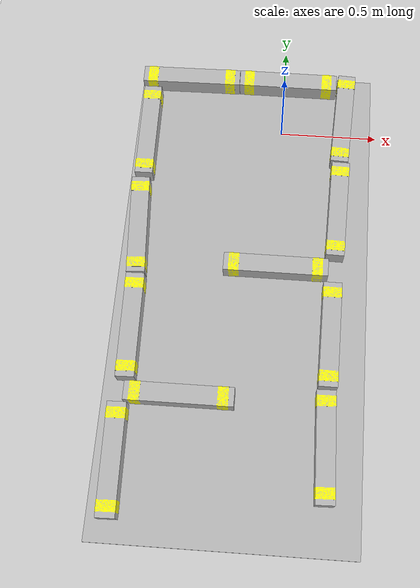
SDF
<sdf version="1.4">
  <world name="default">
    <physics type="ode">
      <gravity>0 0 -9.81</gravity>
      <ode>
        <solver>
          <type>quick</type>
          <iters>20</iters>
          <sor>1.0</sor>
        </solver>
        <constraints>
          <cfm>0.0</cfm>
          <erp>0.2</erp>
          <contact_max_correcting_vel>100.0</contact_max_correcting_vel>
          <contact_surface_layer>0.0</contact_surface_layer>
        </constraints>
      </ode>
      <real_time_update_rate>1000</real_time_update_rate>
      <max_step_size>0.001</max_step_size>
    </physics>
    <light name="light1" type="directional">
      <cast_shadows>true</cast_shadows>
      <pose>-6 0 6 0 0.6 0</pose>
      <diffuse>0.0 0.0 0.0 1.0</diffuse>
      <specular>0.1 0.1 0.1 1</specular>
      <attenuation>
        <range>30</range>
        <constant>0.9</constant>
        <linear>0.01</linear>
        <quadratic>0.001</quadratic>
      </attenuation>
      <direction>0.2 0.0 -1.0</direction>
    </light>

    <include>
      <uri>model://sun</uri>
    </include>

    <gui fullscreen="0">
      <camera name="user_camera">
        <pose>1.152670 -0.041479 3.496780 0.000000 1.123640 3.132190</pose>
        <view_controller>orbit</view_controller>
      </camera>
    </gui>

    <model name="ground_plane">
    <static>1</static>
    <link name="link">
      <collision name="collision">
        <geometry>
          <plane>
            <normal>0 0 1</normal>
            <size>100 100</size>
          </plane>
        </geometry>
        <surface>
          <friction>
            <ode>
              <mu>100</mu>
              <mu2>50</mu2>
            </ode>
          </friction>
          <contact>
            <ode />
          </contact>
          <bounce />
        </surface>
        <max_contacts>10</max_contacts>
      </collision>
      <visual name="visual">
        <cast_shadows>0</cast_shadows>
        <geometry>
          <plane>
            <normal>0 0 1</normal>
            <size>100 100</size>
          </plane>
        </geometry>
        <material>
          <script>
            <uri>file://media/materials/scripts/gazebo.material</uri>
            <name>Gazebo/Grey</name>
          </script>
        </material>
      </visual>
      <self_collide>0</self_collide>
      <kinematic>0</kinematic>
      <gravity>1</gravity>
    </link>
  </model>

  <model name="drc_practice_base_4x8_0">
    <pose frame="">-0.146396 -0.903118 0.029782 0 -0 0</pose>
    <!-- Inretial calculated as cuboid, Ix = m/12*(y2+z2),Iy = m/12*(x2+z2),Iz = m/12*(y2+x2)-->
    <link name="drc_practice_base::platform">
      <inertial>
        <mass>100.00</mass>
        <inertia>
          <ixx>47.57</ixx>
          <ixy>0</ixy>
          <ixz>0</ixz>
          <iyy>11.8967</iyy>
          <iyz>0</iyz>
          <izz>59.4579</izz>
        </inertia>
      </inertial>

      <collision name="collision">
        <geometry>
          <box>
            <size>1.2192 2.4384 0.0254</size>
          </box>
        </geometry>
        <surface>
          <friction>
            <ode>
              <mu>100</mu>
              <mu2>50</mu2>
            </ode>
          </friction>
          <contact>
            <ode />
          </contact>
          <bounce />
        </surface>
        <max_contacts>10</max_contacts>
      </collision>
      <visual name="visual">
        <geometry>
          <box>
            <size>1.2192 2.4384 0.0254</size>
          </box>
        </geometry>
      </visual>
      <pose frame="">0 0 0.0127 0 -0 0</pose>
      <self_collide>0</self_collide>
      <kinematic>0</kinematic>
      <gravity>1</gravity>
    </link>
  </model>

  <model name="drc_practice_4x4x20_3">
    <pose frame="">0.315581 0.035823 0.099548 -1e-06 -0 -1.61947</pose>
    <link name="lumber_4x4x20::link">
      <inertial>
        <mass>1.37</mass>
        <inertia>
          <ixx>0.0018</ixx>
          <ixy>0</ixy>
          <ixz>0</ixz>
          <iyy>0.0303</iyy>
          <iyz>0</iyz>
          <izz>0.0303</izz>
        </inertia>
      </inertial>
      <collision name="collision">
        <geometry>
          <box>
            <size>0.508 0.0888 0.0888</size>
          </box>
        </geometry>
        <surface>
          <bounce>
            <restitution_coefficient>0</restitution_coefficient>
            <threshold>2</threshold>
          </bounce>
          <friction>
            <ode>
              <mu>10</mu>
              <mu2>10</mu2>
            </ode>
          </friction>
          <contact>
            <ode>
              <soft_cfm>0.001</soft_cfm>
              <kp>100000</kp>
              <kd>1000</kd>
            </ode>
          </contact>
        </surface>
        <max_contacts>10</max_contacts>
      </collision>
      <visual name="visual">
        <geometry>
          <mesh>
            <uri>model://drc_practice_4x4x20/meshes/4x4x20.dae</uri>
          </mesh>
        </geometry>
      </visual>
      <pose frame="">0 0 0 0 -0 0</pose>
      <self_collide>0</self_collide>
      <kinematic>0</kinematic>
      <gravity>1</gravity>
    </link>
  </model>

  <model name="drc_practice_4x4x20_8">
    <pose frame="">-0.652132 -1.14382 0.099548 -1e-06 1.05879e-22 -1.55009</pose>
    <link name="lumber_4x4x20::link">
      <inertial>
        <mass>1.37</mass>
        <inertia>
          <ixx>0.0018</ixx>
          <ixy>0</ixy>
          <ixz>0</ixz>
          <iyy>0.0303</iyy>
          <iyz>0</iyz>
          <izz>0.0303</izz>
        </inertia>
      </inertial>
      <collision name="collision">
        <geometry>
          <box>
            <size>0.508 0.0888 0.0888</size>
          </box>
        </geometry>
        <surface>
          <bounce>
            <restitution_coefficient>0</restitution_coefficient>
            <threshold>2</threshold>
          </bounce>
          <friction>
            <ode>
              <mu>10</mu>
              <mu2>10</mu2>
            </ode>
          </friction>
          <contact>
            <ode>
              <soft_cfm>0.001</soft_cfm>
              <kp>100000</kp>
              <kd>1000</kd>
            </ode>
          </contact>
        </surface>
        <max_contacts>10</max_contacts>
      </collision>
      <visual name="visual">
        <geometry>
          <mesh>
            <uri>model://drc_practice_4x4x20/meshes/4x4x20.dae</uri>
          </mesh>
        </geometry>
      </visual>
      <pose frame="">0 0 0 0 -0 0</pose>
      <self_collide>0</self_collide>
      <kinematic>0</kinematic>
      <gravity>1</gravity>
    </link>
  </model>

  <model name="drc_practice_4x4x20_9">
    <pose frame="">0.2907 -1.12778 0.099548 -1e-06 -0 -1.58067</pose>
    <link name="lumber_4x4x20::link">
      <inertial>
        <mass>1.37</mass>
        <inertia>
          <ixx>0.0018</ixx>
          <ixy>0</ixy>
          <ixz>0</ixz>
          <iyy>0.0303</iyy>
          <iyz>0</iyz>
          <izz>0.0303</izz>
        </inertia>
      </inertial>
      <collision name="collision">
        <geometry>
          <box>
            <size>0.508 0.0888 0.0888</size>
          </box>
        </geometry>
        <surface>
          <bounce>
            <restitution_coefficient>0</restitution_coefficient>
            <threshold>2</threshold>
          </bounce>
          <friction>
            <ode>
              <mu>10</mu>
              <mu2>10</mu2>
            </ode>
          </friction>
          <contact>
            <ode>
              <soft_cfm>0.001</soft_cfm>
              <kp>100000</kp>
              <kd>1000</kd>
            </ode>
          </contact>
        </surface>
        <max_contacts>10</max_contacts>
      </collision>
      <visual name="visual">
        <geometry>
          <mesh>
            <uri>model://drc_practice_4x4x20/meshes/4x4x20.dae</uri>
          </mesh>
        </geometry>
      </visual>
      <pose frame="">0 0 0 0 -0 0</pose>
      <self_collide>0</self_collide>
      <kinematic>0</kinematic>
      <gravity>1</gravity>
    </link>
  </model>

  <model name="drc_practice_4x4x20_2">
    <pose frame="">0.304742 -0.47945 0.099548 -1e-06 -0 1.54526</pose>
    <link name="lumber_4x4x20::link">
      <inertial>
        <mass>1.37</mass>
        <inertia>
          <ixx>0.0018</ixx>
          <ixy>0</ixy>
          <ixz>0</ixz>
          <iyy>0.0303</iyy>
          <iyz>0</iyz>
          <izz>0.0303</izz>
        </inertia>
      </inertial>
      <collision name="collision">
        <geometry>
          <box>
            <size>0.508 0.0888 0.0888</size>
          </box>
        </geometry>
        <surface>
          <bounce>
            <restitution_coefficient>0</restitution_coefficient>
            <threshold>2</threshold>
          </bounce>
          <friction>
            <ode>
              <mu>10</mu>
              <mu2>10</mu2>
            </ode>
          </friction>
          <contact>
            <ode>
              <soft_cfm>0.001</soft_cfm>
              <kp>100000</kp>
              <kd>1000</kd>
            </ode>
          </contact>
        </surface>
        <max_contacts>10</max_contacts>
      </collision>
      <visual name="visual">
        <geometry>
          <mesh>
            <uri>model://drc_practice_4x4x20/meshes/4x4x20.dae</uri>
          </mesh>
        </geometry>
      </visual>
      <pose frame="">0 0 0 0 -0 0</pose>
      <self_collide>0</self_collide>
      <kinematic>0</kinematic>
      <gravity>1</gravity>
    </link>
  </model>

  <model name="drc_practice_4x4x20_4">
    <pose frame="">0.01874 0.243701 0.099548 -1e-06 -5.16988e-26 0.000348</pose>
    <link name="lumber_4x4x20::link">
      <inertial>
        <mass>1.37</mass>
        <inertia>
          <ixx>0.0018</ixx>
          <ixy>0</ixy>
          <ixz>0</ixz>
          <iyy>0.0303</iyy>
          <iyz>0</iyz>
          <izz>0.0303</izz>
        </inertia>
      </inertial>
      <collision name="collision">
        <geometry>
          <box>
            <size>0.508 0.0888 0.0888</size>
          </box>
        </geometry>
        <surface>
          <bounce>
            <restitution_coefficient>0</restitution_coefficient>
            <threshold>2</threshold>
          </bounce>
          <friction>
            <ode>
              <mu>10</mu>
              <mu2>10</mu2>
            </ode>
          </friction>
          <contact>
            <ode>
              <soft_cfm>0.001</soft_cfm>
              <kp>100000</kp>
              <kd>1000</kd>
            </ode>
          </contact>
        </surface>
        <max_contacts>10</max_contacts>
      </collision>
      <visual name="visual">
        <geometry>
          <mesh>
            <uri>model://drc_practice_4x4x20/meshes/4x4x20.dae</uri>
          </mesh>
        </geometry>
      </visual>
      <pose frame="">0 0 0 0 -0 0</pose>
      <self_collide>0</self_collide>
      <kinematic>0</kinematic>
      <gravity>1</gravity>
    </link>
  </model>

  <model name="drc_practice_4x4x20_5">
    <pose frame="">-0.490747 0.239631 0.099548 -1e-06 8.27181e-25 0.01284</pose>
    <link name="lumber_4x4x20::link">
      <inertial>
        <mass>1.37</mass>
        <inertia>
          <ixx>0.0018</ixx>
          <ixy>0</ixy>
          <ixz>0</ixz>
          <iyy>0.0303</iyy>
          <iyz>0</iyz>
          <izz>0.0303</izz>
        </inertia>
      </inertial>
      <collision name="collision">
        <geometry>
          <box>
            <size>0.508 0.0888 0.0888</size>
          </box>
        </geometry>
        <surface>
          <bounce>
            <restitution_coefficient>0</restitution_coefficient>
            <threshold>2</threshold>
          </bounce>
          <friction>
            <ode>
              <mu>10</mu>
              <mu2>10</mu2>
            </ode>
          </friction>
          <contact>
            <ode>
              <soft_cfm>0.001</soft_cfm>
              <kp>100000</kp>
              <kd>1000</kd>
            </ode>
          </contact>
        </surface>
        <max_contacts>10</max_contacts>
      </collision>
      <visual name="visual">
        <geometry>
          <mesh>
            <uri>model://drc_practice_4x4x20/meshes/4x4x20.dae</uri>
          </mesh>
        </geometry>
      </visual>
      <pose frame="">0 0 0 0 -0 0</pose>
      <self_collide>0</self_collide>
      <kinematic>0</kinematic>
      <gravity>1</gravity>
    </link>
  </model>

  <model name="drc_practice_4x4x20_6">
    <pose frame="">-0.684784 -0.095033 0.099548 -1e-06 -0 -1.55908</pose>
    <link name="lumber_4x4x20::link">
      <inertial>
        <mass>1.37</mass>
        <inertia>
          <ixx>0.0018</ixx>
          <ixy>0</ixy>
          <ixz>0</ixz>
          <iyy>0.0303</iyy>
          <iyz>0</iyz>
          <izz>0.0303</izz>
        </inertia>
      </inertial>
      <collision name="collision">
        <geometry>
          <box>
            <size>0.508 0.0888 0.0888</size>
          </box>
        </geometry>
        <surface>
          <bounce>
            <restitution_coefficient>0</restitution_coefficient>
            <threshold>2</threshold>
          </bounce>
          <friction>
            <ode>
              <mu>10</mu>
              <mu2>10</mu2>
            </ode>
          </friction>
          <contact>
            <ode>
              <soft_cfm>0.001</soft_cfm>
              <kp>100000</kp>
              <kd>1000</kd>
            </ode>
          </contact>
        </surface>
        <max_contacts>10</max_contacts>
      </collision>
      <visual name="visual">
        <geometry>
          <mesh>
            <uri>model://drc_practice_4x4x20/meshes/4x4x20.dae</uri>
          </mesh>
        </geometry>
      </visual>
      <pose frame="">0 0 0 0 -0 0</pose>
      <self_collide>0</self_collide>
      <kinematic>0</kinematic>
      <gravity>1</gravity>
    </link>
  </model>

  <model name="drc_practice_4x4x20_7">
    <pose frame="">-0.674757 -0.6303 0.099548 -1e-06 -0 -1.5083</pose>
    <link name="lumber_4x4x20::link">
      <inertial>
        <mass>1.37</mass>
        <inertia>
          <ixx>0.0018</ixx>
          <ixy>0</ixy>
          <ixz>0</ixz>
          <iyy>0.0303</iyy>
          <iyz>0</iyz>
          <izz>0.0303</izz>
        </inertia>
      </inertial>
      <collision name="collision">
        <geometry>
          <box>
            <size>0.508 0.0888 0.0888</size>
          </box>
        </geometry>
        <surface>
          <bounce>
            <restitution_coefficient>0</restitution_coefficient>
            <threshold>2</threshold>
          </bounce>
          <friction>
            <ode>
              <mu>10</mu>
              <mu2>10</mu2>
            </ode>
          </friction>
          <contact>
            <ode>
              <soft_cfm>0.001</soft_cfm>
              <kp>100000</kp>
              <kd>1000</kd>
            </ode>
          </contact>
        </surface>
        <max_contacts>10</max_contacts>
      </collision>
      <visual name="visual">
        <geometry>
          <mesh>
            <uri>model://drc_practice_4x4x20/meshes/4x4x20.dae</uri>
          </mesh>
        </geometry>
      </visual>
      <pose frame="">0 0 0 0 -0 0</pose>
      <self_collide>0</self_collide>
      <kinematic>0</kinematic>
      <gravity>1</gravity>
    </link>
  </model>

  <model name="drc_practice_4x4x20_0">
    <pose frame="">0.014089 -0.79869 0.099548 -1e-06 0 0</pose>
    <link name="lumber_4x4x20::link">
      <inertial>
        <mass>1.37</mass>
        <inertia>
          <ixx>0.0018</ixx>
          <ixy>0</ixy>
          <ixz>0</ixz>
          <iyy>0.0303</iyy>
          <iyz>0</iyz>
          <izz>0.0303</izz>
        </inertia>
      </inertial>
      <collision name="collision">
        <geometry>
          <box>
            <size>0.508 0.0888 0.0888</size>
          </box>
        </geometry>
        <surface>
          <bounce>
            <restitution_coefficient>0</restitution_coefficient>
            <threshold>2</threshold>
          </bounce>
          <friction>
            <ode>
              <mu>10</mu>
              <mu2>10</mu2>
            </ode>
          </friction>
          <contact>
            <ode>
              <soft_cfm>0.001</soft_cfm>
              <kp>100000</kp>
              <kd>1000</kd>
            </ode>
          </contact>
        </surface>
        <max_contacts>10</max_contacts>
      </collision>
      <visual name="visual">
        <geometry>
          <mesh>
            <uri>model://drc_practice_4x4x20/meshes/4x4x20.dae</uri>
          </mesh>
        </geometry>
      </visual>
      <pose frame="">0 0 0 0 -0 0</pose>
      <self_collide>0</self_collide>
      <kinematic>0</kinematic>
      <gravity>1</gravity>
    </link>
  </model>

  <model name="drc_practice_4x4x20_1">
    <pose frame="">-0.390015 -1.45903 0.099548 -1e-06 0 0</pose>
    <link name="lumber_4x4x20::link">
      <inertial>
        <mass>1.37</mass>
        <inertia>
          <ixx>0.0018</ixx>
          <ixy>0</ixy>
          <ixz>0</ixz>
          <iyy>0.0303</iyy>
          <iyz>0</iyz>
          <izz>0.0303</izz>
        </inertia>
      </inertial>
      <collision name="collision">
        <geometry>
          <box>
            <size>0.508 0.0888 0.0888</size>
          </box>
        </geometry>
        <surface>
          <bounce>
            <restitution_coefficient>0</restitution_coefficient>
            <threshold>2</threshold>
          </bounce>
          <friction>
            <ode>
              <mu>10</mu>
              <mu2>10</mu2>
            </ode>
          </friction>
          <contact>
            <ode>
              <soft_cfm>0.001</soft_cfm>
              <kp>100000</kp>
              <kd>1000</kd>
            </ode>
          </contact>
        </surface>
        <max_contacts>10</max_contacts>
      </collision>
      <visual name="visual">
        <geometry>
          <mesh>
            <uri>model://drc_practice_4x4x20/meshes/4x4x20.dae</uri>
          </mesh>
        </geometry>
      </visual>
      <pose frame="">0 0 0 0 -0 0</pose>
      <self_collide>0</self_collide>
      <kinematic>0</kinematic>
      <gravity>1</gravity>
    </link>
  </model>

  <model name="drc_practice_4x4x20_10">
    <pose frame="">0.287459 -1.65024 0.099548 -1e-06 -0 1.59485</pose>
    <link name="lumber_4x4x20::link">
      <inertial>
        <mass>1.37</mass>
        <inertia>
          <ixx>0.0018</ixx>
          <ixy>0</ixy>
          <ixz>0</ixz>
          <iyy>0.0303</iyy>
          <iyz>0</iyz>
          <izz>0.0303</izz>
        </inertia>
      </inertial>
      <collision name="collision">
        <geometry>
          <box>
            <size>0.508 0.0888 0.0888</size>
          </box>
        </geometry>
        <surface>
          <bounce>
            <restitution_coefficient>0</restitution_coefficient>
            <threshold>2</threshold>
          </bounce>
          <friction>
            <ode>
              <mu>10</mu>
              <mu2>10</mu2>
            </ode>
          </friction>
          <contact>
            <ode>
              <soft_cfm>0.001</soft_cfm>
              <kp>100000</kp>
              <kd>1000</kd>
            </ode>
          </contact>
        </surface>
        <max_contacts>10</max_contacts>
      </collision>
      <visual name="visual">
        <geometry>
          <mesh>
            <uri>model://drc_practice_4x4x20/meshes/4x4x20.dae</uri>
          </mesh>
        </geometry>
      </visual>
      <pose frame="">0 0 0 0 -0 0</pose>
      <self_collide>0</self_collide>
      <kinematic>0</kinematic>
      <gravity>1</gravity>
    </link>
  </model>

  <model name="drc_practice_4x4x20_11">
    <pose frame="">-0.660348 -1.76781 0.099548 -1.5708 5.55112e-17 -1.54794</pose>
    <link name="lumber_4x4x20::link">
      <inertial>
        <mass>1.37</mass>
        <inertia>
          <ixx>0.0018</ixx>
          <ixy>0</ixy>
          <ixz>0</ixz>
          <iyy>0.0303</iyy>
          <iyz>0</iyz>
          <izz>0.0303</izz>
        </inertia>
      </inertial>
      <collision name="collision">
        <geometry>
          <box>
            <size>0.508 0.0888 0.0888</size>
          </box>
        </geometry>
        <surface>
          <bounce>
            <restitution_coefficient>0</restitution_coefficient>
            <threshold>2</threshold>
          </bounce>
          <friction>
            <ode>
              <mu>10</mu>
              <mu2>10</mu2>
            </ode>
          </friction>
          <contact>
            <ode>
              <soft_cfm>0.001</soft_cfm>
              <kp>100000</kp>
              <kd>1000</kd>
            </ode>
          </contact>
        </surface>
        <max_contacts>10</max_contacts>
      </collision>
      <visual name="visual">
        <geometry>
          <mesh>
            <uri>model://drc_practice_4x4x20/meshes/4x4x20.dae</uri>
          </mesh>
        </geometry>
      </visual>
      <pose frame="">0 0 0 0 -0 0</pose>
      <self_collide>0</self_collide>
      <kinematic>0</kinematic>
      <gravity>1</gravity>
    </link>
  </model>

  </world>
</sdf>
